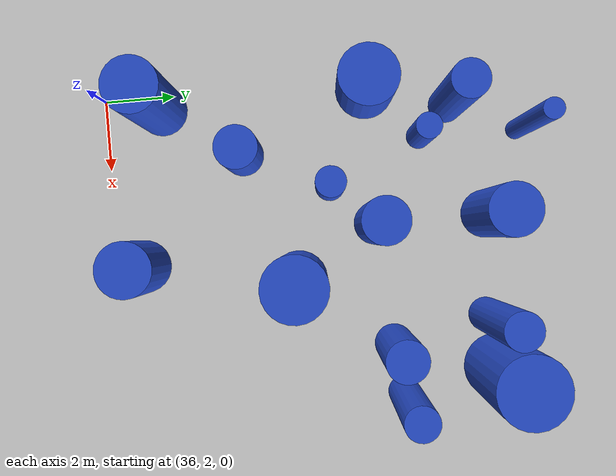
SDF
<sdf version="1.6">
 <world name="default">
  <model name="ground_plane">
   <static>1</static>
   <link name="link">
    <collision name="collision">
     <geometry><plane><normal>0 0 1</normal><size>100 100</size></plane></geometry>
     <surface><friction><ode><mu>100</mu><mu2>50</mu2></ode></friction></surface>
    </collision>
    <visual name="visual">
     <cast_shadows>0</cast_shadows>
     <geometry><plane><normal>0 0 1</normal><size>100 100</size></plane></geometry>
     <material>
      <script><uri>file://media/materials/scripts/gazebo.material</uri><name>Gazebo/Grey</name></script>
     </material>
    </visual>
   </link>
  </model>
  <model name="5">
   <static>0</static>
   <link name="link">
    <inertial>
     <mass>2</mass>
     <inertia><ixx>0.79305</ixx><ixy>0</ixy><ixz>0</ixz><iyy>0.79305</iyy><iyz>0</iyz><izz>0.186767</izz></inertia>
    </inertial>
    <collision name="collision">
     <geometry><cylinder><length>2.0489</length><radius>0.432165</radius></cylinder></geometry>
     <surface><contact><collide_without_contact>1</collide_without_contact></contact></surface>
    </collision>
    <visual name="visual">
     <geometry><cylinder><length>2.0489</length><radius>0.432165</radius></cylinder></geometry>
     <material>
      <script><uri>file://media/materials/scripts/gazebo.material</uri><name>Gazebo/Blue</name></script>
     </material>
    </visual>
    <gravity>0</gravity>
   </link>
   <pose>38.9921 8.31265 1.02445 0 -0 0</pose>
  </model>
  <model name="21">
   <static>0</static>
   <link name="link">
    <inertial>
     <mass>2</mass>
     <inertia><ixx>3.48031</ixx><ixy>0</ixy><ixz>0</ixz><iyy>3.48031</iyy><iyz>0</iyz><izz>0.247758</izz></inertia>
    </inertial>
    <collision name="collision">
     <geometry><cylinder><length>4.4876</length><radius>0.497753</radius></cylinder></geometry>
     <surface><contact><collide_without_contact>1</collide_without_contact></contact></surface>
    </collision>
    <visual name="visual">
     <geometry><cylinder><length>4.4876</length><radius>0.497753</radius></cylinder></geometry>
     <material>
      <script><uri>file://media/materials/scripts/gazebo.material</uri><name>Gazebo/Blue</name></script>
     </material>
    </visual>
    <gravity>0</gravity>
   </link>
   <pose>43.0951 12.5325 2.2438 0 -0 0</pose>
  </model>
  <model name="29">
   <static>0</static>
   <link name="link">
    <inertial>
     <mass>2</mass>
     <inertia><ixx>2.40213</ixx><ixy>0</ixy><ixz>0</ixz><iyy>2.40213</iyy><iyz>0</iyz><izz>0.316267</izz></inertia>
    </inertial>
    <collision name="collision">
     <geometry><cylinder><length>3.66933</length><radius>0.562376</radius></cylinder></geometry>
     <surface><contact><collide_without_contact>1</collide_without_contact></contact></surface>
    </collision>
    <visual name="visual">
     <geometry><cylinder><length>3.66933</length><radius>0.562376</radius></cylinder></geometry>
     <material>
      <script><uri>file://media/materials/scripts/gazebo.material</uri><name>Gazebo/Blue</name></script>
     </material>
    </visual>
    <gravity>0</gravity>
   </link>
   <pose>43.713 9.80193 1.83467 0 -0 0</pose>
  </model>
  <model name="34">
   <static>0</static>
   <link name="link">
    <inertial>
     <mass>2</mass>
     <inertia><ixx>1.29833</ixx><ixy>0</ixy><ixz>0</ixz><iyy>1.29833</iyy><iyz>0</iyz><izz>0.714199</izz></inertia>
    </inertial>
    <collision name="collision">
     <geometry><cylinder><length>2.37642</length><radius>0.845103</radius></cylinder></geometry>
     <surface><contact><collide_without_contact>1</collide_without_contact></contact></surface>
    </collision>
    <visual name="visual">
     <geometry><cylinder><length>2.37642</length><radius>0.845103</radius></cylinder></geometry>
     <material>
      <script><uri>file://media/materials/scripts/gazebo.material</uri><name>Gazebo/Blue</name></script>
     </material>
    </visual>
    <gravity>0</gravity>
   </link>
   <pose>36.2733 9.54869 1.18821 0 -0 0</pose>
  </model>
  <model name="48">
   <static>0</static>
   <link name="link">
    <inertial>
     <mass>2</mass>
     <inertia><ixx>3.26153</ixx><ixy>0</ixy><ixz>0</ixz><iyy>3.26153</iyy><iyz>0</iyz><izz>0.520826</izz></inertia>
    </inertial>
    <collision name="collision">
     <geometry><cylinder><length>4.24343</length><radius>0.721682</radius></cylinder></geometry>
     <surface><contact><collide_without_contact>1</collide_without_contact></contact></surface>
    </collision>
    <visual name="visual">
     <geometry><cylinder><length>4.24343</length><radius>0.721682</radius></cylinder></geometry>
     <material>
      <script><uri>file://media/materials/scripts/gazebo.material</uri><name>Gazebo/Blue</name></script>
     </material>
    </visual>
    <gravity>0</gravity>
   </link>
   <pose>36.3989 3.62936 2.12171 0 -0 0</pose>
  </model>
  <model name="51">
   <static>0</static>
   <link name="link">
    <inertial>
     <mass>2</mass>
     <inertia><ixx>2.86155</ixx><ixy>0</ixy><ixz>0</ixz><iyy>2.86155</iyy><iyz>0</iyz><izz>0.388059</izz></inertia>
    </inertial>
    <collision name="collision">
     <geometry><cylinder><length>4.00064</length><radius>0.622944</radius></cylinder></geometry>
     <surface><contact><collide_without_contact>1</collide_without_contact></contact></surface>
    </collision>
    <visual name="visual">
     <geometry><cylinder><length>4.00064</length><radius>0.622944</radius></cylinder></geometry>
     <material>
      <script><uri>file://media/materials/scripts/gazebo.material</uri><name>Gazebo/Blue</name></script>
     </material>
    </visual>
    <gravity>0</gravity>
   </link>
   <pose>40.1805 9.54253 2.00032 0 -0 0</pose>
  </model>
  <model name="103">
   <static>0</static>
   <link name="link">
    <inertial>
     <mass>2</mass>
     <inertia><ixx>2.72213</ixx><ixy>0</ixy><ixz>0</ixz><iyy>2.72213</iyy><iyz>0</iyz><izz>0.486014</izz></inertia>
    </inertial>
    <collision name="collision">
     <geometry><cylinder><length>3.85678</length><radius>0.697147</radius></cylinder></geometry>
     <surface><contact><collide_without_contact>1</collide_without_contact></contact></surface>
    </collision>
    <visual name="visual">
     <geometry><cylinder><length>3.85678</length><radius>0.697147</radius></cylinder></geometry>
     <material>
      <script><uri>file://media/materials/scripts/gazebo.material</uri><name>Gazebo/Blue</name></script>
     </material>
    </visual>
    <gravity>0</gravity>
   </link>
   <pose>40.1712 12.7482 1.92839 0 -0 0</pose>
  </model>
  <model name="107">
   <static>0</static>
   <link name="link">
    <inertial>
     <mass>2</mass>
     <inertia><ixx>2.6751</ixx><ixy>0</ixy><ixz>0</ixz><iyy>2.6751</iyy><iyz>0</iyz><izz>0.0768651</izz></inertia>
    </inertial>
    <collision name="collision">
     <geometry><cylinder><length>3.97744</length><radius>0.277246</radius></cylinder></geometry>
     <surface><contact><collide_without_contact>1</collide_without_contact></contact></surface>
    </collision>
    <visual name="visual">
     <geometry><cylinder><length>3.97744</length><radius>0.277246</radius></cylinder></geometry>
     <material>
      <script><uri>file://media/materials/scripts/gazebo.material</uri><name>Gazebo/Blue</name></script>
     </material>
    </visual>
    <gravity>0</gravity>
   </link>
   <pose>37.7998 13.8436 1.98872 0 -0 0</pose>
  </model>
  <model name="127">
   <static>0</static>
   <link name="link">
    <inertial>
     <mass>2</mass>
     <inertia><ixx>3.41432</ixx><ixy>0</ixy><ixz>0</ixz><iyy>3.41432</iyy><iyz>0</iyz><izz>0.901291</izz></inertia>
    </inertial>
    <collision name="collision">
     <geometry><cylinder><length>4.21688</length><radius>0.949363</radius></cylinder></geometry>
     <surface><contact><collide_without_contact>1</collide_without_contact></contact></surface>
    </collision>
    <visual name="visual">
     <geometry><cylinder><length>4.21688</length><radius>0.949363</radius></cylinder></geometry>
     <material>
      <script><uri>file://media/materials/scripts/gazebo.material</uri><name>Gazebo/Blue</name></script>
     </material>
    </visual>
    <gravity>0</gravity>
   </link>
   <pose>44.6225 12.7235 2.10844 0 -0 0</pose>
  </model>
  <model name="186">
   <static>0</static>
   <link name="link">
    <inertial>
     <mass>2</mass>
     <inertia><ixx>2.93958</ixx><ixy>0</ixy><ixz>0</ixz><iyy>2.93958</iyy><iyz>0</iyz><izz>0.249669</izz></inertia>
    </inertial>
    <collision name="collision">
     <geometry><cylinder><length>4.10956</length><radius>0.499669</radius></cylinder></geometry>
     <surface><contact><collide_without_contact>1</collide_without_contact></contact></surface>
    </collision>
    <visual name="visual">
     <geometry><cylinder><length>4.10956</length><radius>0.499669</radius></cylinder></geometry>
     <material>
      <script><uri>file://media/materials/scripts/gazebo.material</uri><name>Gazebo/Blue</name></script>
     </material>
    </visual>
    <gravity>0</gravity>
   </link>
   <pose>36.9236 11.8681 2.05478 0 -0 0</pose>
  </model>
  <model name="187">
   <static>0</static>
   <link name="link">
    <inertial>
     <mass>2</mass>
     <inertia><ixx>1.57366</ixx><ixy>0</ixy><ixz>0</ixz><iyy>1.57366</iyy><iyz>0</iyz><izz>0.581682</izz></inertia>
    </inertial>
    <collision name="collision">
     <geometry><cylinder><length>2.77433</length><radius>0.76268</radius></cylinder></geometry>
     <surface><contact><collide_without_contact>1</collide_without_contact></contact></surface>
    </collision>
    <visual name="visual">
     <geometry><cylinder><length>2.77433</length><radius>0.76268</radius></cylinder></geometry>
     <material>
      <script><uri>file://media/materials/scripts/gazebo.material</uri><name>Gazebo/Blue</name></script>
     </material>
    </visual>
    <gravity>0</gravity>
   </link>
   <pose>40.8757 2.74416 1.38717 0 -0 0</pose>
  </model>
  <model name="202">
   <static>0</static>
   <link name="link">
    <inertial>
     <mass>2</mass>
     <inertia><ixx>3.10138</ixx><ixy>0</ixy><ixz>0</ixz><iyy>3.10138</iyy><iyz>0</iyz><izz>0.209682</izz></inertia>
    </inertial>
    <collision name="collision">
     <geometry><cylinder><length>4.24019</length><radius>0.45791</radius></cylinder></geometry>
     <surface><contact><collide_without_contact>1</collide_without_contact></contact></surface>
    </collision>
    <visual name="visual">
     <geometry><cylinder><length>4.24019</length><radius>0.45791</radius></cylinder></geometry>
     <material>
      <script><uri>file://media/materials/scripts/gazebo.material</uri><name>Gazebo/Blue</name></script>
     </material>
    </visual>
    <gravity>0</gravity>
   </link>
   <pose>45.1348 9.97183 2.1201 0 -0 0</pose>
  </model>
  <model name="212">
   <static>0</static>
   <link name="link">
    <inertial>
     <mass>2</mass>
     <inertia><ixx>1.12089</ixx><ixy>0</ixy><ixz>0</ixz><iyy>1.12089</iyy><iyz>0</iyz><izz>0.355767</izz></inertia>
    </inertial>
    <collision name="collision">
     <geometry><cylinder><length>2.37867</length><radius>0.596462</radius></cylinder></geometry>
     <surface><contact><collide_without_contact>1</collide_without_contact></contact></surface>
    </collision>
    <visual name="visual">
     <geometry><cylinder><length>2.37867</length><radius>0.596462</radius></cylinder></geometry>
     <material>
      <script><uri>file://media/materials/scripts/gazebo.material</uri><name>Gazebo/Blue</name></script>
     </material>
    </visual>
    <gravity>0</gravity>
   </link>
   <pose>37.8915 5.87249 1.18933 0 -0 0</pose>
  </model>
  <model name="223">
   <static>0</static>
   <link name="link">
    <inertial>
     <mass>2</mass>
     <inertia><ixx>1.03772</ixx><ixy>0</ixy><ixz>0</ixz><iyy>1.03772</iyy><iyz>0</iyz><izz>0.128133</izz></inertia>
    </inertial>
    <collision name="collision">
     <geometry><cylinder><length>2.417</length><radius>0.357956</radius></cylinder></geometry>
     <surface><contact><collide_without_contact>1</collide_without_contact></contact></surface>
    </collision>
    <visual name="visual">
     <geometry><cylinder><length>2.417</length><radius>0.357956</radius></cylinder></geometry>
     <material>
      <script><uri>file://media/materials/scripts/gazebo.material</uri><name>Gazebo/Blue</name></script>
     </material>
    </visual>
    <gravity>0</gravity>
   </link>
   <pose>37.7609 11.0113 1.2085 0 -0 0</pose>
  </model>
  <model name="245">
   <static>0</static>
   <link name="link">
    <inertial>
     <mass>2</mass>
     <inertia><ixx>4.31321</ixx><ixy>0</ixy><ixz>0</ixz><iyy>4.31321</iyy><iyz>0</iyz><izz>0.691048</izz></inertia>
    </inertial>
    <collision name="collision">
     <geometry><cylinder><length>4.87915</length><radius>0.831293</radius></cylinder></geometry>
     <surface><contact><collide_without_contact>1</collide_without_contact></contact></surface>
    </collision>
    <visual name="visual">
     <geometry><cylinder><length>4.87915</length><radius>0.831293</radius></cylinder></geometry>
     <material>
      <script><uri>file://media/materials/scripts/gazebo.material</uri><name>Gazebo/Blue</name></script>
     </material>
    </visual>
    <gravity>0</gravity>
   </link>
   <pose>41.6182 7.19636 2.43957 0 -0 0</pose>
  </model>
 </world>
</sdf>
